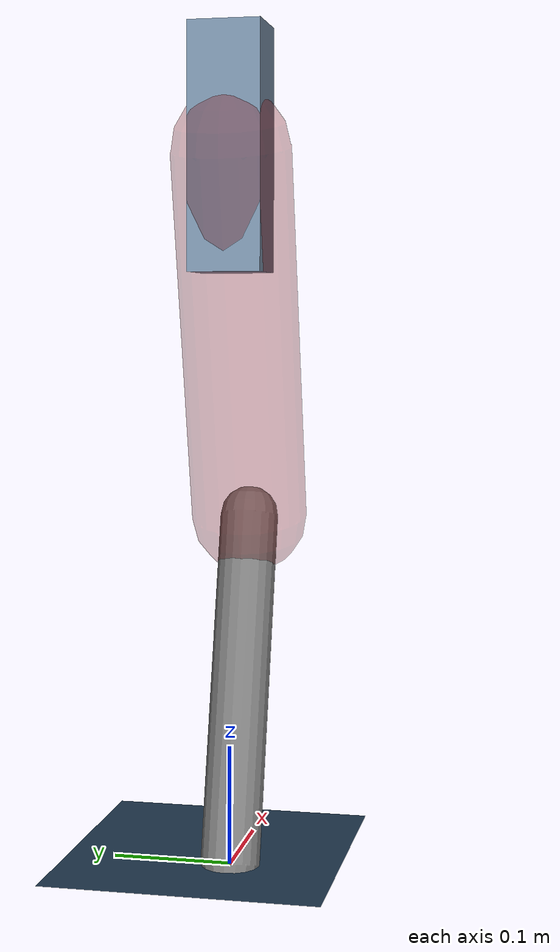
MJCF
<mujoco model="Hopper2D">
	<compiler inertiafromgeom="true" angle="radian" />
	<option timestep="0.001" integrator="implicit" cone="elliptic" solver="Newton" tolerance="1e-10" />

	<default>
		<geom contype="1" conaffinity="1" condim="3" friction="2 0.005 0.0001" solref="0.005 1" />
		<joint limited="true" damping="0.1" />
	</default>

	<asset>
		<texture name="skybox" type="skybox" builtin="gradient" rgb1=".4 .6 .8" rgb2="0 0 0" width="800" height="800" />
		<texture name="grid" type="2d" builtin="checker" rgb1=".1 .2 .3" rgb2=".2 .3 .4" width="300" height="300" mark="edge" markrgb=".2 .3 .4" />
		<material name="ground" texture="grid" texrepeat="1 1" texuniform="true" reflectance="0.1" />
		<material name="leg" rgba="0.5 0.6 0.7 1" />
	</asset>

	<worldbody>

		<geom name="floor" type="plane" size="5 5 0.25" material="ground" />

		<light directional="false" diffuse="0.8 0.8 0.8" specular="0.3 0.3 0.3" pos="0 0 2" dir="0 0 -1" />
		<light mode="targetbodycom" target="base" directional="false" diffuse="0.8 0.8 0.8" specular="0.3 0.3 0.3" pos="0 0 2" dir="0 0 -1" />

		<camera name="fixed" pos="0 -2 1" xyaxes="1 0 0 0 0 1" />
		<camera name="tracking" mode="trackcom" pos="0 -3 1" />

		<body name="root" pos="0 0 0.594955474194176">
			<joint name="slide_x" type="slide" axis="1 0 0" range="-100 100" />
			<joint name="slide_z" type="slide" axis="0 0 1" range="0 10" />

			<body name="base" pos="0 0 0">
				<geom name="torso" type="box" size="0.03 0.03 0.1" mass="3.1130000000000004" material="leg" />

				<body name="link1" pos="0 0 0" euler="0 1.31782387400817 0">
					<joint type="hinge" axis="0 -1 0" pos="0 0 0" name="hinge1" limited="true" range="-3.14 3.14" stiffness="0" damping="0.1" />
					<geom name="thigh" type="capsule" fromto="0 0 0 0.3182221424573862 0 0" size="0.05" rgba="0.5 0 0 0.3" mass="1.0383997846349429" />

					<body name="link2" pos="0.3182221424573862 0 0" euler="0 0.5237957439379808 0">
						<joint type="hinge" axis="0 -1 0" pos="0 0 0" name="hinge2" limited="true" range="-3.14 3.14" stiffness="0" damping="0.1" />
						<geom name="shank" type="capsule" fromto="0 0 0 0.2977128113101982 0 0" size="0.025" mass="0.4815702490481586" />

					</body>
				</body>
			</body>
		</body>
	</worldbody>

	<actuator>
		<motor name="torque1" joint="hinge1" ctrlrange="-178.25099618769303 178.25099618769303" ctrllimited="true" gear="1" />
		<motor name="torque2" joint="hinge2" ctrlrange="-89.7448813486878 89.7448813486878" ctrllimited="true" gear="1" />
	</actuator>
</mujoco>
